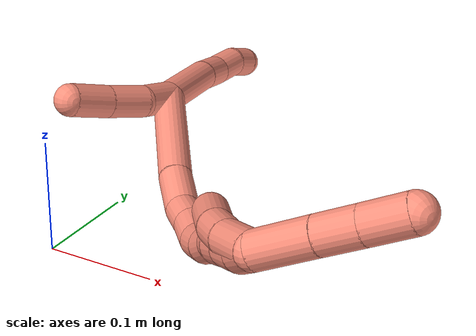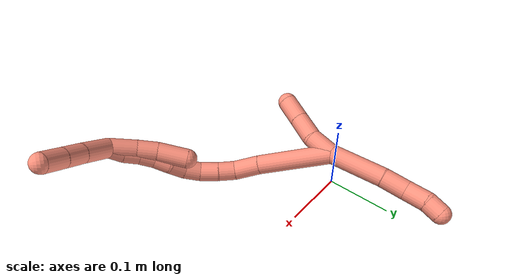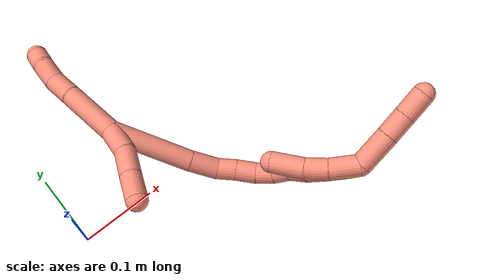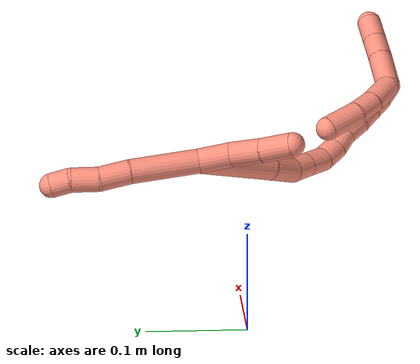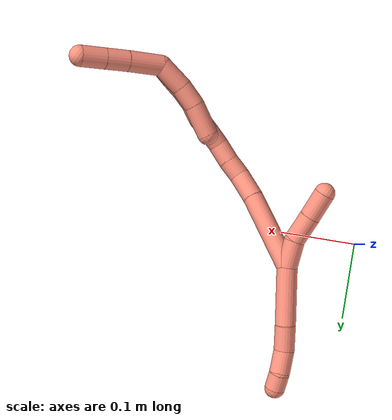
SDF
<sdf version="1.7">
 <world name="default">
  <model name="16">
   <static>0</static>
   <link name="16">
    <collision name="collision-cylinder-e_1_2_8">
     <pose>-0.000956 0.028309 -0.020763 -2.20362 -0.027223 0.053718</pose>
     <geometry><cylinder><radius>0.0125</radius><length>0.070241</length></cylinder></geometry>
     <surface>
      <friction><ode><mu>1.16</mu><mu2>1.16</mu2><slip1>0</slip1><slip2>0</slip2></ode></friction>
      <contact><ode><kp>1e+06</kp><kd>1</kd><max_vel>0</max_vel><min_depth>0.001</min_depth></ode></contact>
     </surface>
    </collision>
    <visual name="visual-cylinder-e_1_2_8">
     <pose>-0.000956 0.028309 -0.020763 -2.20362 -0.027223 0.053718</pose>
     <geometry><cylinder><radius>0.0125</radius><length>0.070241</length></cylinder></geometry>
     <material><ambient>1 0.576471 0.494118 1</ambient></material>
    </visual>
    <collision name="collision-cylinder-e_2_8_9">
     <pose>-0.000791 0.069261 -0.050694 -2.19821 0.071659 -0.14031</pose>
     <geometry><cylinder><radius>0.0125</radius><length>0.031314</length></cylinder></geometry>
     <surface>
      <friction><ode><mu>1.16</mu><mu2>1.16</mu2><slip1>0</slip1><slip2>0</slip2></ode></friction>
      <contact><ode><kp>1e+06</kp><kd>1</kd><max_vel>0</max_vel><min_depth>0.001</min_depth></ode></contact>
     </surface>
    </collision>
    <visual name="visual-cylinder-e_2_8_9">
     <pose>-0.000791 0.069261 -0.050694 -2.19821 0.071659 -0.14031</pose>
     <geometry><cylinder><radius>0.0125</radius><length>0.031314</length></cylinder></geometry>
     <material><ambient>1 0.576471 0.494118 1</ambient></material>
    </visual>
    <collision name="collision-cylinder-e_3_9_10">
     <pose>-0.000823 0.094528 -0.066025 -2.02495 -0.081914 0.131029</pose>
     <geometry><cylinder><radius>0.0125</radius><length>0.028191</length></cylinder></geometry>
     <surface>
      <friction><ode><mu>1.16</mu><mu2>1.16</mu2><slip1>0</slip1><slip2>0</slip2></ode></friction>
      <contact><ode><kp>1e+06</kp><kd>1</kd><max_vel>0</max_vel><min_depth>0.001</min_depth></ode></contact>
     </surface>
    </collision>
    <visual name="visual-cylinder-e_3_9_10">
     <pose>-0.000823 0.094528 -0.066025 -2.02495 -0.081914 0.131029</pose>
     <geometry><cylinder><radius>0.0125</radius><length>0.028191</length></cylinder></geometry>
     <material><ambient>1 0.576471 0.494118 1</ambient></material>
    </visual>
    <collision name="collision-cylinder-e_4_10_6">
     <pose>-1.4e-05 0.116297 -0.076072 -1.97244 0.195067 -0.293594</pose>
     <geometry><cylinder><radius>0.0125</radius><length>0.020254</length></cylinder></geometry>
     <surface>
      <friction><ode><mu>1.16</mu><mu2>1.16</mu2><slip1>0</slip1><slip2>0</slip2></ode></friction>
      <contact><ode><kp>1e+06</kp><kd>1</kd><max_vel>0</max_vel><min_depth>0.001</min_depth></ode></contact>
     </surface>
    </collision>
    <visual name="visual-cylinder-e_4_10_6">
     <pose>-1.4e-05 0.116297 -0.076072 -1.97244 0.195067 -0.293594</pose>
     <geometry><cylinder><radius>0.0125</radius><length>0.020254</length></cylinder></geometry>
     <material><ambient>1 0.576471 0.494118 1</ambient></material>
    </visual>
    <collision name="collision-cylinder-e_1_2_11">
     <pose>-0.00198 -0.015323 0.006733 1.15681 -0.117749 -0.076929</pose>
     <geometry><cylinder><radius>0.0125</radius><length>0.033707</length></cylinder></geometry>
     <surface>
      <friction><ode><mu>1.16</mu><mu2>1.16</mu2><slip1>0</slip1><slip2>0</slip2></ode></friction>
      <contact><ode><kp>1e+06</kp><kd>1</kd><max_vel>0</max_vel><min_depth>0.001</min_depth></ode></contact>
     </surface>
    </collision>
    <visual name="visual-cylinder-e_1_2_11">
     <pose>-0.00198 -0.015323 0.006733 1.15681 -0.117749 -0.076929</pose>
     <geometry><cylinder><radius>0.0125</radius><length>0.033707</length></cylinder></geometry>
     <material><ambient>1 0.576471 0.494118 1</ambient></material>
    </visual>
    <collision name="collision-cylinder-e_2_11_12">
     <pose>-0.006748 -0.04705 0.015255 1.46211 -0.167361 -0.150161</pose>
     <geometry><cylinder><radius>0.0125</radius><length>0.033471</length></cylinder></geometry>
     <surface>
      <friction><ode><mu>1.16</mu><mu2>1.16</mu2><slip1>0</slip1><slip2>0</slip2></ode></friction>
      <contact><ode><kp>1e+06</kp><kd>1</kd><max_vel>0</max_vel><min_depth>0.001</min_depth></ode></contact>
     </surface>
    </collision>
    <visual name="visual-cylinder-e_2_11_12">
     <pose>-0.006748 -0.04705 0.015255 1.46211 -0.167361 -0.150161</pose>
     <geometry><cylinder><radius>0.0125</radius><length>0.033471</length></cylinder></geometry>
     <material><ambient>1 0.576471 0.494118 1</ambient></material>
    </visual>
    <collision name="collision-cylinder-e_3_12_5">
     <pose>-0.012999 -0.079337 0.019296 1.43001 -0.212637 -0.184797</pose>
     <geometry><cylinder><radius>0.0125</radius><length>0.032822</length></cylinder></geometry>
     <surface>
      <friction><ode><mu>1.16</mu><mu2>1.16</mu2><slip1>0</slip1><slip2>0</slip2></ode></friction>
      <contact><ode><kp>1e+06</kp><kd>1</kd><max_vel>0</max_vel><min_depth>0.001</min_depth></ode></contact>
     </surface>
    </collision>
    <visual name="visual-cylinder-e_3_12_5">
     <pose>-0.012999 -0.079337 0.019296 1.43001 -0.212637 -0.184797</pose>
     <geometry><cylinder><radius>0.0125</radius><length>0.032822</length></cylinder></geometry>
     <material><ambient>1 0.576471 0.494118 1</ambient></material>
    </visual>
    <collision name="collision-cylinder-e_1_2_13">
     <pose>0.019401 -0.020272 0.039064 0.478682 0.415192 0.102705</pose>
     <geometry><cylinder><radius>0.0125</radius><length>0.096195</length></cylinder></geometry>
     <surface>
      <friction><ode><mu>1.16</mu><mu2>1.16</mu2><slip1>0</slip1><slip2>0</slip2></ode></friction>
      <contact><ode><kp>1e+06</kp><kd>1</kd><max_vel>0</max_vel><min_depth>0.001</min_depth></ode></contact>
     </surface>
    </collision>
    <visual name="visual-cylinder-e_1_2_13">
     <pose>0.019401 -0.020272 0.039064 0.478682 0.415192 0.102705</pose>
     <geometry><cylinder><radius>0.0125</radius><length>0.096195</length></cylinder></geometry>
     <material><ambient>1 0.576471 0.494118 1</ambient></material>
    </visual>
    <collision name="collision-cylinder-e_2_13_14">
     <pose>0.045895 -0.046093 0.092254 0.374298 0.437215 0.084088</pose>
     <geometry><cylinder><radius>0.0125</radius><length>0.033504</length></cylinder></geometry>
     <surface>
      <friction><ode><mu>1.16</mu><mu2>1.16</mu2><slip1>0</slip1><slip2>0</slip2></ode></friction>
      <contact><ode><kp>1e+06</kp><kd>1</kd><max_vel>0</max_vel><min_depth>0.001</min_depth></ode></contact>
     </surface>
    </collision>
    <visual name="visual-cylinder-e_2_13_14">
     <pose>0.045895 -0.046093 0.092254 0.374298 0.437215 0.084088</pose>
     <geometry><cylinder><radius>0.0125</radius><length>0.033504</length></cylinder></geometry>
     <material><ambient>1 0.576471 0.494118 1</ambient></material>
    </visual>
    <collision name="collision-cylinder-e_3_14_15">
     <pose>0.054455 -0.05458 0.117149 0.266385 0.130631 0.017527</pose>
     <geometry><cylinder><radius>0.0125</radius><length>0.022518</length></cylinder></geometry>
     <surface>
      <friction><ode><mu>1.16</mu><mu2>1.16</mu2><slip1>0</slip1><slip2>0</slip2></ode></friction>
      <contact><ode><kp>1e+06</kp><kd>1</kd><max_vel>0</max_vel><min_depth>0.001</min_depth></ode></contact>
     </surface>
    </collision>
    <visual name="visual-cylinder-e_3_14_15">
     <pose>0.054455 -0.05458 0.117149 0.266385 0.130631 0.017527</pose>
     <geometry><cylinder><radius>0.0125</radius><length>0.022518</length></cylinder></geometry>
     <material><ambient>1 0.576471 0.494118 1</ambient></material>
    </visual>
    <collision name="collision-cylinder-e_4_15_16">
     <pose>0.057302 -0.061773 0.139361 0.355953 0.112611 0.020277</pose>
     <geometry><cylinder><radius>0.0125</radius><length>0.024572</length></cylinder></geometry>
     <surface>
      <friction><ode><mu>1.16</mu><mu2>1.16</mu2><slip1>0</slip1><slip2>0</slip2></ode></friction>
      <contact><ode><kp>1e+06</kp><kd>1</kd><max_vel>0</max_vel><min_depth>0.001</min_depth></ode></contact>
     </surface>
    </collision>
    <visual name="visual-cylinder-e_4_15_16">
     <pose>0.057302 -0.061773 0.139361 0.355953 0.112611 0.020277</pose>
     <geometry><cylinder><radius>0.0125</radius><length>0.024572</length></cylinder></geometry>
     <material><ambient>1 0.576471 0.494118 1</ambient></material>
    </visual>
    <collision name="collision-cylinder-e_5_16_17">
     <pose>0.056639 -0.06895 0.161022 0.278613 -0.189962 -0.026714</pose>
     <geometry><cylinder><radius>0.0125</radius><length>0.021646</length></cylinder></geometry>
     <surface>
      <friction><ode><mu>1.16</mu><mu2>1.16</mu2><slip1>0</slip1><slip2>0</slip2></ode></friction>
      <contact><ode><kp>1e+06</kp><kd>1</kd><max_vel>0</max_vel><min_depth>0.001</min_depth></ode></contact>
     </surface>
    </collision>
    <visual name="visual-cylinder-e_5_16_17">
     <pose>0.056639 -0.06895 0.161022 0.278613 -0.189962 -0.026714</pose>
     <geometry><cylinder><radius>0.0125</radius><length>0.021646</length></cylinder></geometry>
     <material><ambient>1 0.576471 0.494118 1</ambient></material>
    </visual>
    <collision name="collision-cylinder-e_6_17_18">
     <pose>0.050226 -0.073785 0.180139 0.211661 -0.447617 -0.04835</pose>
     <geometry><cylinder><radius>0.0125</radius><length>0.020191</length></cylinder></geometry>
     <surface>
      <friction><ode><mu>1.16</mu><mu2>1.16</mu2><slip1>0</slip1><slip2>0</slip2></ode></friction>
      <contact><ode><kp>1e+06</kp><kd>1</kd><max_vel>0</max_vel><min_depth>0.001</min_depth></ode></contact>
     </surface>
    </collision>
    <visual name="visual-cylinder-e_6_17_18">
     <pose>0.050226 -0.073785 0.180139 0.211661 -0.447617 -0.04835</pose>
     <geometry><cylinder><radius>0.0125</radius><length>0.020191</length></cylinder></geometry>
     <material><ambient>1 0.576471 0.494118 1</ambient></material>
    </visual>
    <collision name="collision-cylinder-e_7_18_19">
     <pose>0.042796 -0.080124 0.198124 0.453316 -0.293951 -0.068257</pose>
     <geometry><cylinder><radius>0.0125</radius><length>0.021123</length></cylinder></geometry>
     <surface>
      <friction><ode><mu>1.16</mu><mu2>1.16</mu2><slip1>0</slip1><slip2>0</slip2></ode></friction>
      <contact><ode><kp>1e+06</kp><kd>1</kd><max_vel>0</max_vel><min_depth>0.001</min_depth></ode></contact>
     </surface>
    </collision>
    <visual name="visual-cylinder-e_7_18_19">
     <pose>0.042796 -0.080124 0.198124 0.453316 -0.293951 -0.068257</pose>
     <geometry><cylinder><radius>0.0125</radius><length>0.021123</length></cylinder></geometry>
     <material><ambient>1 0.576471 0.494118 1</ambient></material>
    </visual>
    <collision name="collision-cylinder-e_8_19_20">
     <pose>0.036903 -0.087099 0.216506 0.267559 -0.285856 -0.038731</pose>
     <geometry><cylinder><radius>0.0125</radius><length>0.02009</length></cylinder></geometry>
     <surface>
      <friction><ode><mu>1.16</mu><mu2>1.16</mu2><slip1>0</slip1><slip2>0</slip2></ode></friction>
      <contact><ode><kp>1e+06</kp><kd>1</kd><max_vel>0</max_vel><min_depth>0.001</min_depth></ode></contact>
     </surface>
    </collision>
    <visual name="visual-cylinder-e_8_19_20">
     <pose>0.036903 -0.087099 0.216506 0.267559 -0.285856 -0.038731</pose>
     <geometry><cylinder><radius>0.0125</radius><length>0.02009</length></cylinder></geometry>
     <material><ambient>1 0.576471 0.494118 1</ambient></material>
    </visual>
    <collision name="collision-cylinder-e_9_20_21">
     <pose>0.032166 -0.091425 0.235535 0.18063 -0.190179 -0.017274</pose>
     <geometry><cylinder><radius>0.0125</radius><length>0.020153</length></cylinder></geometry>
     <surface>
      <friction><ode><mu>1.16</mu><mu2>1.16</mu2><slip1>0</slip1><slip2>0</slip2></ode></friction>
      <contact><ode><kp>1e+06</kp><kd>1</kd><max_vel>0</max_vel><min_depth>0.001</min_depth></ode></contact>
     </surface>
    </collision>
    <visual name="visual-cylinder-e_9_20_21">
     <pose>0.032166 -0.091425 0.235535 0.18063 -0.190179 -0.017274</pose>
     <geometry><cylinder><radius>0.0125</radius><length>0.020153</length></cylinder></geometry>
     <material><ambient>1 0.576471 0.494118 1</ambient></material>
    </visual>
    <collision name="collision-cylinder-e_10_21_1">
     <pose>0.026076 -0.095154 0.254143 0.216504 -0.431605 -0.047638</pose>
     <geometry><cylinder><radius>0.0125</radius><length>0.020008</length></cylinder></geometry>
     <surface>
      <friction><ode><mu>1.16</mu><mu2>1.16</mu2><slip1>0</slip1><slip2>0</slip2></ode></friction>
      <contact><ode><kp>1e+06</kp><kd>1</kd><max_vel>0</max_vel><min_depth>0.001</min_depth></ode></contact>
     </surface>
    </collision>
    <visual name="visual-cylinder-e_10_21_1">
     <pose>0.026076 -0.095154 0.254143 0.216504 -0.431605 -0.047638</pose>
     <geometry><cylinder><radius>0.0125</radius><length>0.020008</length></cylinder></geometry>
     <material><ambient>1 0.576471 0.494118 1</ambient></material>
    </visual>
    <collision name="collision-cylinder-e_1_1_22">
     <pose>0.014224 -0.086772 0.279822 -0.551324 -0.370685 0.105971</pose>
     <geometry><cylinder><radius>0.0125</radius><length>0.042332</length></cylinder></geometry>
     <surface>
      <friction><ode><mu>1.16</mu><mu2>1.16</mu2><slip1>0</slip1><slip2>0</slip2></ode></friction>
      <contact><ode><kp>1e+06</kp><kd>1</kd><max_vel>0</max_vel><min_depth>0.001</min_depth></ode></contact>
     </surface>
    </collision>
    <visual name="visual-cylinder-e_1_1_22">
     <pose>0.014224 -0.086772 0.279822 -0.551324 -0.370685 0.105971</pose>
     <geometry><cylinder><radius>0.0125</radius><length>0.042332</length></cylinder></geometry>
     <material><ambient>1 0.576471 0.494118 1</ambient></material>
    </visual>
    <collision name="collision-cylinder-e_2_22_23">
     <pose>0.001681 -0.069323 0.307515 -0.578821 -0.358678 0.107859</pose>
     <geometry><cylinder><radius>0.0125</radius><length>0.027781</length></cylinder></geometry>
     <surface>
      <friction><ode><mu>1.16</mu><mu2>1.16</mu2><slip1>0</slip1><slip2>0</slip2></ode></friction>
      <contact><ode><kp>1e+06</kp><kd>1</kd><max_vel>0</max_vel><min_depth>0.001</min_depth></ode></contact>
     </surface>
    </collision>
    <visual name="visual-cylinder-e_2_22_23">
     <pose>0.001681 -0.069323 0.307515 -0.578821 -0.358678 0.107859</pose>
     <geometry><cylinder><radius>0.0125</radius><length>0.027781</length></cylinder></geometry>
     <material><ambient>1 0.576471 0.494118 1</ambient></material>
    </visual>
    <collision name="collision-cylinder-e_3_23_4">
     <pose>-0.008533 -0.054587 0.330097 -0.577569 -0.365216 0.109614</pose>
     <geometry><cylinder><radius>0.0125</radius><length>0.029888</length></cylinder></geometry>
     <surface>
      <friction><ode><mu>1.16</mu><mu2>1.16</mu2><slip1>0</slip1><slip2>0</slip2></ode></friction>
      <contact><ode><kp>1e+06</kp><kd>1</kd><max_vel>0</max_vel><min_depth>0.001</min_depth></ode></contact>
     </surface>
    </collision>
    <visual name="visual-cylinder-e_3_23_4">
     <pose>-0.008533 -0.054587 0.330097 -0.577569 -0.365216 0.109614</pose>
     <geometry><cylinder><radius>0.0125</radius><length>0.029888</length></cylinder></geometry>
     <material><ambient>1 0.576471 0.494118 1</ambient></material>
    </visual>
    <collision name="collision-cylinder-e_1_1_24">
     <pose>0.024282 -0.094584 0.246104 -2.99352 0.138879 -1.50655</pose>
     <geometry><cylinder><radius>0.0125</radius><length>0.034533</length></cylinder></geometry>
     <surface>
      <friction><ode><mu>1.16</mu><mu2>1.16</mu2><slip1>0</slip1><slip2>0</slip2></ode></friction>
      <contact><ode><kp>1e+06</kp><kd>1</kd><max_vel>0</max_vel><min_depth>0.001</min_depth></ode></contact>
     </surface>
    </collision>
    <visual name="visual-cylinder-e_1_1_24">
     <pose>0.024282 -0.094584 0.246104 -2.99352 0.138879 -1.50655</pose>
     <geometry><cylinder><radius>0.0125</radius><length>0.034533</length></cylinder></geometry>
     <material><ambient>1 0.576471 0.494118 1</ambient></material>
    </visual>
    <collision name="collision-cylinder-e_2_24_25">
     <pose>0.027759 -0.088287 0.21654 -2.85171 0.082161 -0.548988</pose>
     <geometry><cylinder><radius>0.0125</radius><length>0.026493</length></cylinder></geometry>
     <surface>
      <friction><ode><mu>1.16</mu><mu2>1.16</mu2><slip1>0</slip1><slip2>0</slip2></ode></friction>
      <contact><ode><kp>1e+06</kp><kd>1</kd><max_vel>0</max_vel><min_depth>0.001</min_depth></ode></contact>
     </surface>
    </collision>
    <visual name="visual-cylinder-e_2_24_25">
     <pose>0.027759 -0.088287 0.21654 -2.85171 0.082161 -0.548988</pose>
     <geometry><cylinder><radius>0.0125</radius><length>0.026493</length></cylinder></geometry>
     <material><ambient>1 0.576471 0.494118 1</ambient></material>
    </visual>
    <collision name="collision-cylinder-e_3_25_3">
     <pose>0.030542 -0.075661 0.186612 -2.66811 0.087123 -0.357479</pose>
     <geometry><cylinder><radius>0.0125</radius><length>0.038974</length></cylinder></geometry>
     <surface>
      <friction><ode><mu>1.16</mu><mu2>1.16</mu2><slip1>0</slip1><slip2>0</slip2></ode></friction>
      <contact><ode><kp>1e+06</kp><kd>1</kd><max_vel>0</max_vel><min_depth>0.001</min_depth></ode></contact>
     </surface>
    </collision>
    <visual name="visual-cylinder-e_3_25_3">
     <pose>0.030542 -0.075661 0.186612 -2.66811 0.087123 -0.357479</pose>
     <geometry><cylinder><radius>0.0125</radius><length>0.038974</length></cylinder></geometry>
     <material><ambient>1 0.576471 0.494118 1</ambient></material>
    </visual>
    <collision name="collision-sphere-3">
     <pose>0.032237 -0.066809 0.169334 0 -0 0</pose>
     <geometry><sphere><radius>0.0125</radius></sphere></geometry>
     <surface>
      <friction><ode><mu>1.16</mu><mu2>1.16</mu2><slip1>0</slip1><slip2>0</slip2></ode></friction>
      <contact><ode><kp>1e+06</kp><kd>1</kd><max_vel>0</max_vel><min_depth>0.001</min_depth></ode></contact>
     </surface>
    </collision>
    <visual name="visual-sphere-3">
     <pose>0.032237 -0.066809 0.169334 0 -0 0</pose>
     <geometry><sphere><radius>0.0125</radius></sphere></geometry>
     <material><ambient>1 0.576471 0.494118 1</ambient></material>
    </visual>
    <collision name="collision-sphere-25">
     <pose>0.028846 -0.084514 0.203889 0 -0 0</pose>
     <geometry><sphere><radius>0.0125</radius></sphere></geometry>
     <surface>
      <friction><ode><mu>1.16</mu><mu2>1.16</mu2><slip1>0</slip1><slip2>0</slip2></ode></friction>
      <contact><ode><kp>1e+06</kp><kd>1</kd><max_vel>0</max_vel><min_depth>0.001</min_depth></ode></contact>
     </surface>
    </collision>
    <visual name="visual-sphere-25">
     <pose>0.028846 -0.084514 0.203889 0 -0 0</pose>
     <geometry><sphere><radius>0.0125</radius></sphere></geometry>
     <material><ambient>1 0.576471 0.494118 1</ambient></material>
    </visual>
    <collision name="collision-sphere-24">
     <pose>0.026672 -0.092061 0.229191 0 -0 0</pose>
     <geometry><sphere><radius>0.0125</radius></sphere></geometry>
     <surface>
      <friction><ode><mu>1.16</mu><mu2>1.16</mu2><slip1>0</slip1><slip2>0</slip2></ode></friction>
      <contact><ode><kp>1e+06</kp><kd>1</kd><max_vel>0</max_vel><min_depth>0.001</min_depth></ode></contact>
     </surface>
    </collision>
    <visual name="visual-sphere-24">
     <pose>0.026672 -0.092061 0.229191 0 -0 0</pose>
     <geometry><sphere><radius>0.0125</radius></sphere></geometry>
     <material><ambient>1 0.576471 0.494118 1</ambient></material>
    </visual>
    <collision name="collision-sphere-4">
     <pose>-0.01387 -0.046966 0.341791 0 -0 0</pose>
     <geometry><sphere><radius>0.0125</radius></sphere></geometry>
     <surface>
      <friction><ode><mu>1.16</mu><mu2>1.16</mu2><slip1>0</slip1><slip2>0</slip2></ode></friction>
      <contact><ode><kp>1e+06</kp><kd>1</kd><max_vel>0</max_vel><min_depth>0.001</min_depth></ode></contact>
     </surface>
    </collision>
    <visual name="visual-sphere-4">
     <pose>-0.01387 -0.046966 0.341791 0 -0 0</pose>
     <geometry><sphere><radius>0.0125</radius></sphere></geometry>
     <material><ambient>1 0.576471 0.494118 1</ambient></material>
    </visual>
    <collision name="collision-sphere-23">
     <pose>-0.003195 -0.062208 0.318403 0 -0 0</pose>
     <geometry><sphere><radius>0.0125</radius></sphere></geometry>
     <surface>
      <friction><ode><mu>1.16</mu><mu2>1.16</mu2><slip1>0</slip1><slip2>0</slip2></ode></friction>
      <contact><ode><kp>1e+06</kp><kd>1</kd><max_vel>0</max_vel><min_depth>0.001</min_depth></ode></contact>
     </surface>
    </collision>
    <visual name="visual-sphere-23">
     <pose>-0.003195 -0.062208 0.318403 0 -0 0</pose>
     <geometry><sphere><radius>0.0125</radius></sphere></geometry>
     <material><ambient>1 0.576471 0.494118 1</ambient></material>
    </visual>
    <collision name="collision-sphere-22">
     <pose>0.006557 -0.076438 0.296628 0 -0 0</pose>
     <geometry><sphere><radius>0.0125</radius></sphere></geometry>
     <surface>
      <friction><ode><mu>1.16</mu><mu2>1.16</mu2><slip1>0</slip1><slip2>0</slip2></ode></friction>
      <contact><ode><kp>1e+06</kp><kd>1</kd><max_vel>0</max_vel><min_depth>0.001</min_depth></ode></contact>
     </surface>
    </collision>
    <visual name="visual-sphere-22">
     <pose>0.006557 -0.076438 0.296628 0 -0 0</pose>
     <geometry><sphere><radius>0.0125</radius></sphere></geometry>
     <material><ambient>1 0.576471 0.494118 1</ambient></material>
    </visual>
    <collision name="collision-sphere-1">
     <pose>0.021891 -0.097106 0.263017 0 -0 0</pose>
     <geometry><sphere><radius>0.0125</radius></sphere></geometry>
     <surface>
      <friction><ode><mu>1.16</mu><mu2>1.16</mu2><slip1>0</slip1><slip2>0</slip2></ode></friction>
      <contact><ode><kp>1e+06</kp><kd>1</kd><max_vel>0</max_vel><min_depth>0.001</min_depth></ode></contact>
     </surface>
    </collision>
    <visual name="visual-sphere-1">
     <pose>0.021891 -0.097106 0.263017 0 -0 0</pose>
     <geometry><sphere><radius>0.0125</radius></sphere></geometry>
     <material><ambient>1 0.576471 0.494118 1</ambient></material>
    </visual>
    <collision name="collision-sphere-21">
     <pose>0.030261 -0.093202 0.245269 0 -0 0</pose>
     <geometry><sphere><radius>0.0125</radius></sphere></geometry>
     <surface>
      <friction><ode><mu>1.16</mu><mu2>1.16</mu2><slip1>0</slip1><slip2>0</slip2></ode></friction>
      <contact><ode><kp>1e+06</kp><kd>1</kd><max_vel>0</max_vel><min_depth>0.001</min_depth></ode></contact>
     </surface>
    </collision>
    <visual name="visual-sphere-21">
     <pose>0.030261 -0.093202 0.245269 0 -0 0</pose>
     <geometry><sphere><radius>0.0125</radius></sphere></geometry>
     <material><ambient>1 0.576471 0.494118 1</ambient></material>
    </visual>
    <collision name="collision-sphere-11">
     <pose>-0.00396 -0.030646 0.013465 0 -0 0</pose>
     <geometry><sphere><radius>0.0125</radius></sphere></geometry>
     <surface>
      <friction><ode><mu>1.16</mu><mu2>1.16</mu2><slip1>0</slip1><slip2>0</slip2></ode></friction>
      <contact><ode><kp>1e+06</kp><kd>1</kd><max_vel>0</max_vel><min_depth>0.001</min_depth></ode></contact>
     </surface>
    </collision>
    <visual name="visual-sphere-11">
     <pose>-0.00396 -0.030646 0.013465 0 -0 0</pose>
     <geometry><sphere><radius>0.0125</radius></sphere></geometry>
     <material><ambient>1 0.576471 0.494118 1</ambient></material>
    </visual>
    <collision name="collision-sphere-6">
     <pose>0.001949 0.125441 -0.079956 0 -0 0</pose>
     <geometry><sphere><radius>0.0125</radius></sphere></geometry>
     <surface>
      <friction><ode><mu>1.16</mu><mu2>1.16</mu2><slip1>0</slip1><slip2>0</slip2></ode></friction>
      <contact><ode><kp>1e+06</kp><kd>1</kd><max_vel>0</max_vel><min_depth>0.001</min_depth></ode></contact>
     </surface>
    </collision>
    <visual name="visual-sphere-6">
     <pose>0.001949 0.125441 -0.079956 0 -0 0</pose>
     <geometry><sphere><radius>0.0125</radius></sphere></geometry>
     <material><ambient>1 0.576471 0.494118 1</ambient></material>
    </visual>
    <collision name="collision-sphere-10">
     <pose>-0.001977 0.107153 -0.072188 0 -0 0</pose>
     <geometry><sphere><radius>0.0125</radius></sphere></geometry>
     <surface>
      <friction><ode><mu>1.16</mu><mu2>1.16</mu2><slip1>0</slip1><slip2>0</slip2></ode></friction>
      <contact><ode><kp>1e+06</kp><kd>1</kd><max_vel>0</max_vel><min_depth>0.001</min_depth></ode></contact>
     </surface>
    </collision>
    <visual name="visual-sphere-10">
     <pose>-0.001977 0.107153 -0.072188 0 -0 0</pose>
     <geometry><sphere><radius>0.0125</radius></sphere></geometry>
     <material><ambient>1 0.576471 0.494118 1</ambient></material>
    </visual>
    <collision name="collision-sphere-9">
     <pose>0.00033 0.081904 -0.059862 0 -0 0</pose>
     <geometry><sphere><radius>0.0125</radius></sphere></geometry>
     <surface>
      <friction><ode><mu>1.16</mu><mu2>1.16</mu2><slip1>0</slip1><slip2>0</slip2></ode></friction>
      <contact><ode><kp>1e+06</kp><kd>1</kd><max_vel>0</max_vel><min_depth>0.001</min_depth></ode></contact>
     </surface>
    </collision>
    <visual name="visual-sphere-9">
     <pose>0.00033 0.081904 -0.059862 0 -0 0</pose>
     <geometry><sphere><radius>0.0125</radius></sphere></geometry>
     <material><ambient>1 0.576471 0.494118 1</ambient></material>
    </visual>
    <collision name="collision-sphere-2">
     <geometry><sphere><radius>0.0125</radius></sphere></geometry>
     <surface>
      <friction><ode><mu>1.16</mu><mu2>1.16</mu2><slip1>0</slip1><slip2>0</slip2></ode></friction>
      <contact><ode><kp>1e+06</kp><kd>1</kd><max_vel>0</max_vel><min_depth>0.001</min_depth></ode></contact>
     </surface>
    </collision>
    <visual name="visual-sphere-2">
     <geometry><sphere><radius>0.0125</radius></sphere></geometry>
     <material><ambient>1 0.576471 0.494118 1</ambient></material>
    </visual>
    <collision name="collision-sphere-19">
     <pose>0.039736 -0.084551 0.207212 0 -0 0</pose>
     <geometry><sphere><radius>0.0125</radius></sphere></geometry>
     <surface>
      <friction><ode><mu>1.16</mu><mu2>1.16</mu2><slip1>0</slip1><slip2>0</slip2></ode></friction>
      <contact><ode><kp>1e+06</kp><kd>1</kd><max_vel>0</max_vel><min_depth>0.001</min_depth></ode></contact>
     </surface>
    </collision>
    <visual name="visual-sphere-19">
     <pose>0.039736 -0.084551 0.207212 0 -0 0</pose>
     <geometry><sphere><radius>0.0125</radius></sphere></geometry>
     <material><ambient>1 0.576471 0.494118 1</ambient></material>
    </visual>
    <collision name="collision-sphere-8">
     <pose>-0.001912 0.056619 -0.041526 0 -0 0</pose>
     <geometry><sphere><radius>0.0125</radius></sphere></geometry>
     <surface>
      <friction><ode><mu>1.16</mu><mu2>1.16</mu2><slip1>0</slip1><slip2>0</slip2></ode></friction>
      <contact><ode><kp>1e+06</kp><kd>1</kd><max_vel>0</max_vel><min_depth>0.001</min_depth></ode></contact>
     </surface>
    </collision>
    <visual name="visual-sphere-8">
     <pose>-0.001912 0.056619 -0.041526 0 -0 0</pose>
     <geometry><sphere><radius>0.0125</radius></sphere></geometry>
     <material><ambient>1 0.576471 0.494118 1</ambient></material>
    </visual>
    <collision name="collision-sphere-12">
     <pose>-0.009535 -0.063454 0.017045 0 -0 0</pose>
     <geometry><sphere><radius>0.0125</radius></sphere></geometry>
     <surface>
      <friction><ode><mu>1.16</mu><mu2>1.16</mu2><slip1>0</slip1><slip2>0</slip2></ode></friction>
      <contact><ode><kp>1e+06</kp><kd>1</kd><max_vel>0</max_vel><min_depth>0.001</min_depth></ode></contact>
     </surface>
    </collision>
    <visual name="visual-sphere-12">
     <pose>-0.009535 -0.063454 0.017045 0 -0 0</pose>
     <geometry><sphere><radius>0.0125</radius></sphere></geometry>
     <material><ambient>1 0.576471 0.494118 1</ambient></material>
    </visual>
    <collision name="collision-sphere-5">
     <pose>-0.016462 -0.09522 0.021547 0 -0 0</pose>
     <geometry><sphere><radius>0.0125</radius></sphere></geometry>
     <surface>
      <friction><ode><mu>1.16</mu><mu2>1.16</mu2><slip1>0</slip1><slip2>0</slip2></ode></friction>
      <contact><ode><kp>1e+06</kp><kd>1</kd><max_vel>0</max_vel><min_depth>0.001</min_depth></ode></contact>
     </surface>
    </collision>
    <visual name="visual-sphere-5">
     <pose>-0.016462 -0.09522 0.021547 0 -0 0</pose>
     <geometry><sphere><radius>0.0125</radius></sphere></geometry>
     <material><ambient>1 0.576471 0.494118 1</ambient></material>
    </visual>
    <collision name="collision-sphere-13">
     <pose>0.038802 -0.040544 0.078129 0 -0 0</pose>
     <geometry><sphere><radius>0.0125</radius></sphere></geometry>
     <surface>
      <friction><ode><mu>1.16</mu><mu2>1.16</mu2><slip1>0</slip1><slip2>0</slip2></ode></friction>
      <contact><ode><kp>1e+06</kp><kd>1</kd><max_vel>0</max_vel><min_depth>0.001</min_depth></ode></contact>
     </surface>
    </collision>
    <visual name="visual-sphere-13">
     <pose>0.038802 -0.040544 0.078129 0 -0 0</pose>
     <geometry><sphere><radius>0.0125</radius></sphere></geometry>
     <material><ambient>1 0.576471 0.494118 1</ambient></material>
    </visual>
    <collision name="collision-sphere-14">
     <pose>0.052988 -0.051641 0.10638 0 -0 0</pose>
     <geometry><sphere><radius>0.0125</radius></sphere></geometry>
     <surface>
      <friction><ode><mu>1.16</mu><mu2>1.16</mu2><slip1>0</slip1><slip2>0</slip2></ode></friction>
      <contact><ode><kp>1e+06</kp><kd>1</kd><max_vel>0</max_vel><min_depth>0.001</min_depth></ode></contact>
     </surface>
    </collision>
    <visual name="visual-sphere-14">
     <pose>0.052988 -0.051641 0.10638 0 -0 0</pose>
     <geometry><sphere><radius>0.0125</radius></sphere></geometry>
     <material><ambient>1 0.576471 0.494118 1</ambient></material>
    </visual>
    <collision name="collision-sphere-15">
     <pose>0.055921 -0.057519 0.127918 0 -0 0</pose>
     <geometry><sphere><radius>0.0125</radius></sphere></geometry>
     <surface>
      <friction><ode><mu>1.16</mu><mu2>1.16</mu2><slip1>0</slip1><slip2>0</slip2></ode></friction>
      <contact><ode><kp>1e+06</kp><kd>1</kd><max_vel>0</max_vel><min_depth>0.001</min_depth></ode></contact>
     </surface>
    </collision>
    <visual name="visual-sphere-15">
     <pose>0.055921 -0.057519 0.127918 0 -0 0</pose>
     <geometry><sphere><radius>0.0125</radius></sphere></geometry>
     <material><ambient>1 0.576471 0.494118 1</ambient></material>
    </visual>
    <collision name="collision-sphere-16">
     <pose>0.058682 -0.066027 0.150804 0 -0 0</pose>
     <geometry><sphere><radius>0.0125</radius></sphere></geometry>
     <surface>
      <friction><ode><mu>1.16</mu><mu2>1.16</mu2><slip1>0</slip1><slip2>0</slip2></ode></friction>
      <contact><ode><kp>1e+06</kp><kd>1</kd><max_vel>0</max_vel><min_depth>0.001</min_depth></ode></contact>
     </surface>
    </collision>
    <visual name="visual-sphere-16">
     <pose>0.058682 -0.066027 0.150804 0 -0 0</pose>
     <geometry><sphere><radius>0.0125</radius></sphere></geometry>
     <material><ambient>1 0.576471 0.494118 1</ambient></material>
    </visual>
    <collision name="collision-sphere-17">
     <pose>0.054595 -0.071873 0.171241 0 -0 0</pose>
     <geometry><sphere><radius>0.0125</radius></sphere></geometry>
     <surface>
      <friction><ode><mu>1.16</mu><mu2>1.16</mu2><slip1>0</slip1><slip2>0</slip2></ode></friction>
      <contact><ode><kp>1e+06</kp><kd>1</kd><max_vel>0</max_vel><min_depth>0.001</min_depth></ode></contact>
     </surface>
    </collision>
    <visual name="visual-sphere-17">
     <pose>0.054595 -0.071873 0.171241 0 -0 0</pose>
     <geometry><sphere><radius>0.0125</radius></sphere></geometry>
     <material><ambient>1 0.576471 0.494118 1</ambient></material>
    </visual>
    <collision name="collision-sphere-18">
     <pose>0.045856 -0.075697 0.189036 0 -0 0</pose>
     <geometry><sphere><radius>0.0125</radius></sphere></geometry>
     <surface>
      <friction><ode><mu>1.16</mu><mu2>1.16</mu2><slip1>0</slip1><slip2>0</slip2></ode></friction>
      <contact><ode><kp>1e+06</kp><kd>1</kd><max_vel>0</max_vel><min_depth>0.001</min_depth></ode></contact>
     </surface>
    </collision>
    <visual name="visual-sphere-18">
     <pose>0.045856 -0.075697 0.189036 0 -0 0</pose>
     <geometry><sphere><radius>0.0125</radius></sphere></geometry>
     <material><ambient>1 0.576471 0.494118 1</ambient></material>
    </visual>
    <collision name="collision-sphere-20">
     <pose>0.034071 -0.089647 0.225801 0 -0 0</pose>
     <geometry><sphere><radius>0.0125</radius></sphere></geometry>
     <surface>
      <friction><ode><mu>1.16</mu><mu2>1.16</mu2><slip1>0</slip1><slip2>0</slip2></ode></friction>
      <contact><ode><kp>1e+06</kp><kd>1</kd><max_vel>0</max_vel><min_depth>0.001</min_depth></ode></contact>
     </surface>
    </collision>
    <visual name="visual-sphere-20">
     <pose>0.034071 -0.089647 0.225801 0 -0 0</pose>
     <geometry><sphere><radius>0.0125</radius></sphere></geometry>
     <material><ambient>1 0.576471 0.494118 1</ambient></material>
    </visual>
    <inertial>
     <pose>0.017889 -0.036953 0.113447 0 -0 0</pose>
     <mass>0.75</mass>
     <inertia><ixx>0.00016</ixx><ixy>0</ixy><ixz>0</ixz><iyy>7.3e-05</iyy><iyz>0</iyz><izz>-3e-06</izz></inertia>
    </inertial>
   </link>
   <pose>0.093973 0.042553 0.145797 -0.377328 1.429 -0.868688</pose>
  </model>
 </world>
</sdf>
